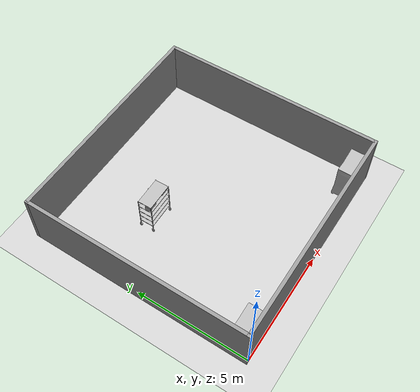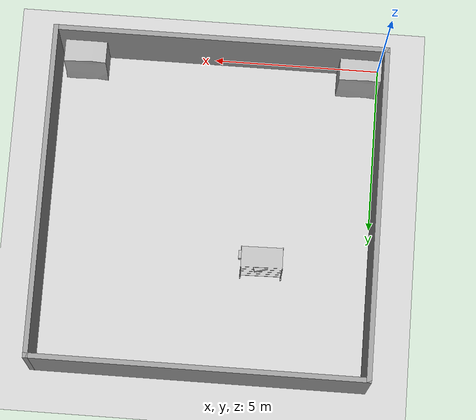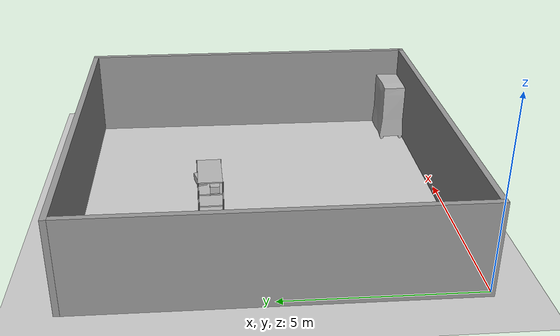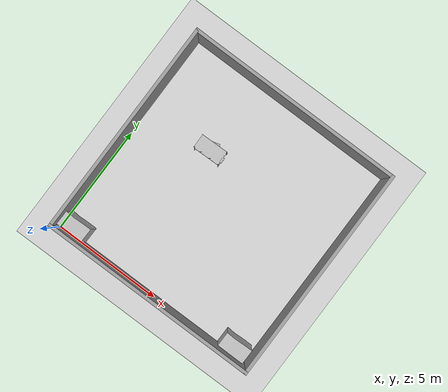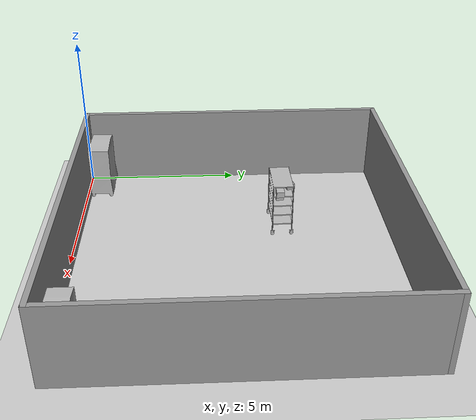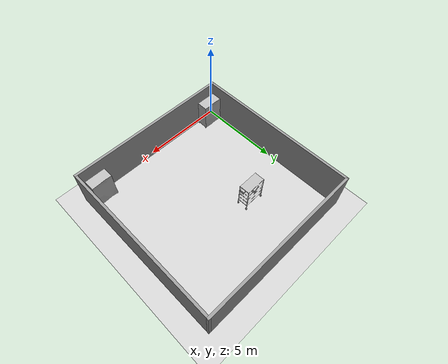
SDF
<sdf version="1.7">
 <world name="default">
  <light name="sun" type="directional">
   <pose>0 0 10 0 -0 0</pose>
   <diffuse>0.8 0.8 0.8 1</diffuse>
   <specular>0.2 0.2 0.2 1</specular>
   <attenuation>
    <range>1000</range>
    <constant>0.9</constant>
    <linear>0.01</linear>
    <quadratic>0.001</quadratic>
   </attenuation>
   <direction>-0.5 0.1 -0.9</direction>
   <spot><inner_angle>0</inner_angle><outer_angle>0</outer_angle><falloff>0</falloff></spot>
  </light>
  <model name="ground_plane">
   <static>1</static>
   <link name="link">
    <collision name="collision">
     <geometry><plane><normal>0 0 1</normal><size>100 100</size></plane></geometry>
     <surface><friction><ode><mu>100</mu><mu2>50</mu2></ode></friction></surface>
    </collision>
    <visual name="visual">
     <cast_shadows>0</cast_shadows>
     <geometry><plane><normal>0 0 1</normal><size>100 100</size></plane></geometry>
     <material>
      <script><uri>file://media/materials/scripts/gazebo.material</uri><name>Gazebo/Grey</name></script>
     </material>
    </visual>
   </link>
  </model>
  <gravity>0 0 -9.8</gravity>
  <magnetic_field>6e-06 2.3e-05 -4.2e-05</magnetic_field>
  <atmosphere type="adiabatic"/>
  <physics type="ode">
   <max_step_size>0.001</max_step_size>
   <real_time_factor>1</real_time_factor>
   <real_time_update_rate>1000</real_time_update_rate>
  </physics>
  <scene><ambient>0.4 0.4 0.4 1</ambient><background>0.7 0.7 0.7 1</background><shadows>1</shadows></scene>
  <audio><device>default</device></audio>
  <spherical_coordinates>
   <surface_model>EARTH_WGS84</surface_model>
   <latitude_deg>0</latitude_deg>
   <longitude_deg>0</longitude_deg>
   <elevation>0</elevation>
   <heading_deg>0</heading_deg>
  </spherical_coordinates>
  <model name="inter">
   <pose>4.83241 4.97383 0 0 -0 0</pose>
   <link name="Wall_2">
    <collision name="Wall_2_Collision">
     <geometry><box><size>10 0.15 2.5</size></box></geometry>
     <pose>0 0 1.25 0 -0 0</pose>
    </collision>
    <visual name="Wall_2_Visual">
     <pose>0 0 1.25 0 -0 0</pose>
     <geometry><box><size>10 0.15 2.5</size></box></geometry>
     <material>
      <script><uri>file://media/materials/scripts/gazebo.material</uri><name>Gazebo/Grey</name></script>
      <ambient>1 1 1 1</ambient>
     </material>
     <meta><layer>0</layer></meta>
    </visual>
    <pose>0 -4.925 0 0 -0 0</pose>
   </link>
   <link name="Wall_6">
    <collision name="Wall_6_Collision">
     <geometry><box><size>10 0.15 2.5</size></box></geometry>
     <pose>0 0 1.25 0 -0 0</pose>
    </collision>
    <visual name="Wall_6_Visual">
     <pose>0 0 1.25 0 -0 0</pose>
     <geometry><box><size>10 0.15 2.5</size></box></geometry>
     <material>
      <script><uri>file://media/materials/scripts/gazebo.material</uri><name>Gazebo/Grey</name></script>
      <ambient>1 1 1 1</ambient>
     </material>
     <meta><layer>0</layer></meta>
    </visual>
    <pose>4.925 0 0 0 -0 1.5708</pose>
   </link>
   <link name="Wall_7">
    <collision name="Wall_7_Collision">
     <geometry><box><size>10 0.15 2.5</size></box></geometry>
     <pose>0 0 1.25 0 -0 0</pose>
    </collision>
    <visual name="Wall_7_Visual">
     <pose>0 0 1.25 0 -0 0</pose>
     <geometry><box><size>10 0.15 2.5</size></box></geometry>
     <material>
      <script><uri>file://media/materials/scripts/gazebo.material</uri><name>Gazebo/Grey</name></script>
      <ambient>1 1 1 1</ambient>
     </material>
     <meta><layer>0</layer></meta>
    </visual>
    <pose>0 4.925 0 0 -0 3.14159</pose>
   </link>
   <link name="Wall_8">
    <collision name="Wall_8_Collision">
     <geometry><box><size>10 0.15 2.5</size></box></geometry>
     <pose>0 0 1.25 0 -0 0</pose>
    </collision>
    <visual name="Wall_8_Visual">
     <pose>0 0 1.25 0 -0 0</pose>
     <geometry><box><size>10 0.15 2.5</size></box></geometry>
     <material>
      <script><uri>file://media/materials/scripts/gazebo.material</uri><name>Gazebo/Grey</name></script>
      <ambient>1 1 1 1</ambient>
     </material>
     <meta><layer>0</layer></meta>
    </visual>
    <pose>-4.925 0 0 0 -0 -1.5708</pose>
   </link>
   <static>1</static>
  </model>
  <model name="StorageRack">
   <link name="link">
    <visual name="visual">
     <geometry><mesh><uri>model://StorageRack/meshes/StorageRack.obj</uri></mesh></geometry>
    </visual>
    <collision name="collision">
     <geometry><mesh><uri>model://StorageRack/meshes/StorageRack.obj</uri></mesh></geometry>
    </collision>
    <inertial>
     <inertia><ixx>1</ixx><ixy>0</ixy><ixz>0</ixz><iyy>1</iyy><iyz>0</iyz><izz>1</izz></inertia>
     <mass>1</mass>
    </inertial>
   </link>
   <pose>3.18341 6.41189 -0 0 -0 0.019146</pose>
  </model>
  <model name="StorageRackCovered">
   <link name="link">
    <visual name="visual">
     <geometry><mesh><uri>model://StorageRackCovered/meshes/StorageRackCovered.obj</uri></mesh></geometry>
    </visual>
    <collision name="collision">
     <geometry><mesh><uri>model://StorageRackCovered/meshes/StorageRackCovered.obj</uri></mesh></geometry>
    </collision>
    <inertial>
     <inertia><ixx>1</ixx><ixy>0</ixy><ixz>0</ixz><iyy>1</iyy><iyz>0</iyz><izz>1</izz></inertia>
     <mass>1</mass>
    </inertial>
   </link>
   <pose>8.88083 0.51239 -1e-06 -0 2e-06 -0.00504</pose>
  </model>
  <model name="StorageRackCovered_0">
   <link name="link">
    <visual name="visual">
     <geometry><mesh><uri>model://StorageRackCovered/meshes/StorageRackCovered.obj</uri></mesh></geometry>
    </visual>
    <collision name="collision">
     <geometry><mesh><uri>model://StorageRackCovered/meshes/StorageRackCovered.obj</uri></mesh></geometry>
    </collision>
    <inertial>
     <inertia><ixx>1</ixx><ixy>0</ixy><ixz>0</ixz><iyy>1</iyy><iyz>0</iyz><izz>1</izz></inertia>
     <mass>1</mass>
    </inertial>
   </link>
   <pose>0.622134 0.510494 -1e-06 0 1e-06 -0.013153</pose>
  </model>
  <model name="small box">
   <pose>3.67634 6.33506 1.49804 1.7e-05 4.4e-05 0.011952</pose>
   <static>0</static>
   <link name="link">
    <inertial>
     <mass>2</mass>
     <inertia><ixx>1</ixx><ixy>0</ixy><ixz>0</ixz><iyy>1</iyy><iyz>0</iyz><izz>1</izz></inertia>
    </inertial>
    <collision name="collision">
     <geometry><box><size>0.4 0.23 0.18</size></box></geometry>
     <surface><contact><ode><max_vel>0.1</max_vel><min_depth>0.001</min_depth></ode></contact></surface>
    </collision>
    <visual name="visual">
     <geometry><mesh><uri>model://small_box/meshes/small_box.dae</uri></mesh></geometry>
    </visual>
   </link>
  </model>
  <model name="small box_clone">
   <pose>3.21591 6.64814 1.49802 3.14158 5e-06 -2.88124</pose>
   <static>0</static>
   <link name="link">
    <inertial>
     <mass>2</mass>
     <inertia><ixx>1</ixx><ixy>0</ixy><ixz>0</ixz><iyy>1</iyy><iyz>0</iyz><izz>1</izz></inertia>
    </inertial>
    <collision name="collision">
     <geometry><box><size>0.4 0.23 0.18</size></box></geometry>
     <surface><contact><ode><max_vel>0.1</max_vel><min_depth>0.001</min_depth></ode></contact></surface>
    </collision>
    <visual name="visual">
     <geometry><mesh><uri>model://small_box/meshes/small_box.dae</uri></mesh></geometry>
    </visual>
   </link>
  </model>
  <model name="small box_clone_0">
   <pose>2.80777 6.29535 1.49801 -1.2e-05 -1e-06 0.012224</pose>
   <static>0</static>
   <link name="link">
    <inertial>
     <mass>2</mass>
     <inertia><ixx>1</ixx><ixy>0</ixy><ixz>0</ixz><iyy>1</iyy><iyz>0</iyz><izz>1</izz></inertia>
    </inertial>
    <collision name="collision">
     <geometry><box><size>0.4 0.23 0.18</size></box></geometry>
     <surface><contact><ode><max_vel>0.1</max_vel><min_depth>0.001</min_depth></ode></contact></surface>
    </collision>
    <visual name="visual">
     <geometry><mesh><uri>model://small_box/meshes/small_box.dae</uri></mesh></geometry>
    </visual>
   </link>
  </model>
  <model name="small box_clone_1">
   <pose>3.29363 6.35879 1.16602 -3e-06 9.1e-05 0.012497</pose>
   <static>0</static>
   <link name="link">
    <inertial>
     <mass>2</mass>
     <inertia><ixx>1</ixx><ixy>0</ixy><ixz>0</ixz><iyy>1</iyy><iyz>0</iyz><izz>1</izz></inertia>
    </inertial>
    <collision name="collision">
     <geometry><box><size>0.4 0.23 0.18</size></box></geometry>
     <surface><contact><ode><max_vel>0.1</max_vel><min_depth>0.001</min_depth></ode></contact></surface>
    </collision>
    <visual name="visual">
     <geometry><mesh><uri>model://small_box/meshes/small_box.dae</uri></mesh></geometry>
    </visual>
   </link>
  </model>
 </world>
</sdf>
